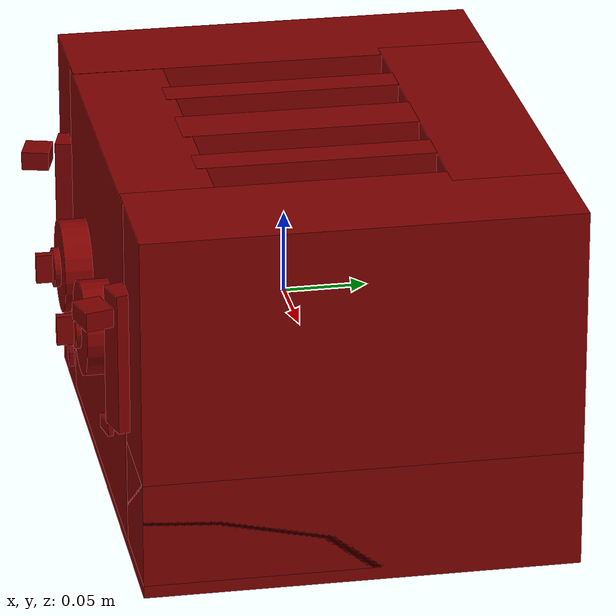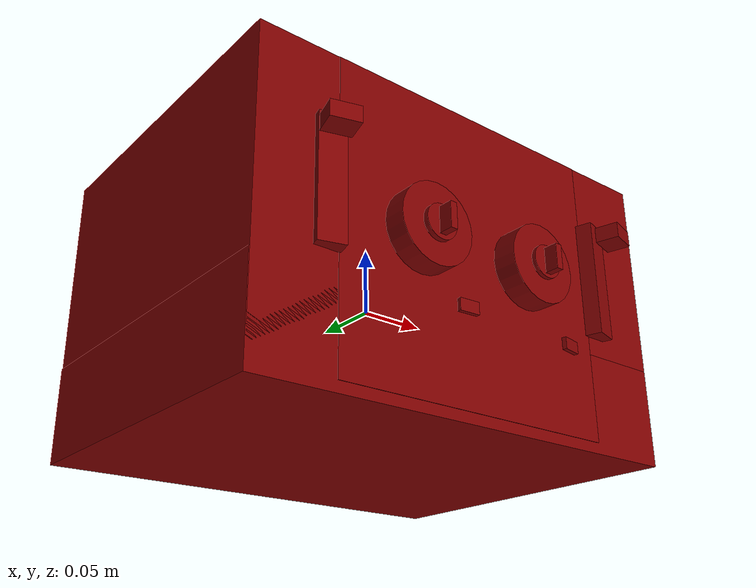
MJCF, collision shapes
<?xml version='1.0' encoding='UTF-8'?>
<mujoco model="model">
  <option timestep="0.002" gravity="0.0 0.0 -9.81"/>
  <compiler angle="radian"/>
  <asset>
    <mesh file="visuals/sideL_button_cancel.obj" name="sideL_button_cancel_vis"/>
    <mesh file="visuals/sideL_knob_doneness.obj" name="sideL_knob_doneness_vis"/>
    <mesh file="visuals/sideL_lever.obj" name="sideL_lever_vis"/>
    <mesh file="visuals/sideR_button_cancel.obj" name="sideR_button_cancel_vis"/>
    <mesh file="visuals/sideR_knob_doneness.obj" name="sideR_knob_doneness_vis"/>
    <mesh file="visuals/sideR_lever.obj" name="sideR_lever_vis"/>
    <mesh file="visuals/Body001.obj" name="Body001_vis"/>
    <texture file="visuals/T_BC001.png" name="Body001_material" type="2d"/>
    <material name="Body001_material" rgba="1 1 1 1.0" texture="Body001_material" shininess="0.4472135901451111" specular="0.3103448502657381"/>
    <texture file="visuals/T_BC001.png" name="sideL_button_cancel_material" type="2d"/>
    <material name="sideL_button_cancel_material" rgba="1 1 1 1.0" texture="sideL_button_cancel_material" shininess="0.4472135901451111" specular="0.3103448502657381"/>
    <texture file="visuals/T_BC001.png" name="sideL_knob_doneness_material" type="2d"/>
    <material name="sideL_knob_doneness_material" rgba="1 1 1 1.0" texture="sideL_knob_doneness_material" shininess="0.4472135901451111" specular="0.3103448502657381"/>
    <texture file="visuals/T_BC001.png" name="sideL_lever_material" type="2d"/>
    <material name="sideL_lever_material" rgba="1 1 1 1.0" texture="sideL_lever_material" shininess="0.4472135901451111" specular="0.3103448502657381"/>
    <texture file="visuals/T_BC001.png" name="sideR_button_cancel_material" type="2d"/>
    <material name="sideR_button_cancel_material" rgba="1 1 1 1.0" texture="sideR_button_cancel_material" shininess="0.4472135901451111" specular="0.3103448502657381"/>
    <texture file="visuals/T_BC001.png" name="sideR_knob_doneness_material" type="2d"/>
    <material name="sideR_knob_doneness_material" rgba="1 1 1 1.0" texture="sideR_knob_doneness_material" shininess="0.4472135901451111" specular="0.3103448502657381"/>
    <texture file="visuals/T_BC001.png" name="sideR_lever_material" type="2d"/>
    <material name="sideR_lever_material" rgba="1 1 1 1.0" texture="sideR_lever_material" shininess="1" specular="1"/>
  </asset>
  <default>
    <default class="visual">
      <geom conaffinity="0" contype="0" group="1" type="mesh"/>
    </default>
    <default class="collision_1">
      <geom group="0" rgba="0.5 0 0 0.5" solref="0.004 1" solimp="0.998 0.998 0.001"/>
    </default>
    <default class="collision_2">
      <geom group="0" rgba="0.5 0 0 0.5" solref="0.004 1" solimp="0.998 0.998 0.001"/>
    </default>
    <default class="collision_3">
      <geom group="0" rgba="0.5 0 0 0.5" solref="0.004 1" solimp="0.998 0.998 0.001"/>
    </default>
    <default class="collision_4">
      <geom group="0" rgba="0.5 0 0 0.5" solref="0.004 1" solimp="0.998 0.998 0.001"/>
    </default>
    <default class="collision_5">
      <geom group="0" rgba="0.5 0 0 0.5" solref="0.004 1" solimp="0.998 0.998 0.001"/>
    </default>
    <default class="collision_6">
      <geom group="0" rgba="0.5 0 0 0.5" solref="0.004 1" solimp="0.998 0.998 0.001"/>
    </default>
    <default class="collision_7">
      <geom group="0" rgba="0.5 0 0 0.5" solref="0.004 1" solimp="0.998 0.998 0.001"/>
    </default>
    <default class="spawn">
      <geom group="0" rgba="1 1 1 0.5" contype="0" conaffinity="0"/>
      <site group="0" rgba="1 1 1 0.5"/>
    </default>
    <default class="region">
      <geom group="1" conaffinity="0" contype="0" rgba="0 1 0 0" mass="0"/>
    </default>
  </default>
  <worldbody>
    <body>
      <body name="object">
        <geom mesh="Body001_vis" type="mesh" solimp="0.998 0.998 0.001" solref="0.001 1" friction="0.95 0.3 0.1" class="visual" material="Body001_material"/>
        <geom type="box" pos="-0.13326146 0.01620062 0.00307653" size="0.035240065306425095 0.1285618394613266 0.10625135898590088" quat="1.0 0.0 0.0 0.0" class="collision_1"/>
        <geom type="box" pos="0.13402896 0.01620062 0.00307653" size="0.03781827911734581 0.1285618394613266 0.10625135898590088" quat="1.0 0.0 0.0 0.0" class="collision_1"/>
        <geom type="box" pos="0.00024525 0.11157913 0.00307652" size="0.10979682207107544 0.03318332880735397 0.10625135898590088" quat="1.0 0.0 0.0 0.0" class="collision_1"/>
        <geom type="box" pos="0.00024525 -0.08512871 0.00300962" size="0.10979682207107544 0.027723005041480064 0.1061844676733017" quat="1.0 0.0 0.0 0.0" class="collision_1"/>
        <geom type="box" pos="-0.05576750 0.00788908 0.00312442" size="0.01008566189557314 0.07094787806272507 0.1062992662191391" quat="1.0 0.0 0.0 0.0" class="collision_1"/>
        <geom type="box" pos="0.00002723 0.00788908 0.00312440" size="0.01638152450323105 0.070948526263237 0.10630057752132416" quat="1.0 0.0 0.0 0.0" class="collision_1"/>
        <geom type="box" pos="0.05630670 0.00788908 0.00312442" size="0.010627384297549725 0.07094787806272507 0.1062992662191391" quat="1.0 0.0 0.0 0.0" class="collision_1"/>
        <geom type="box" pos="0.00138552 0.01620062 -0.07528724" size="0.1704617291688919 0.1285618394613266 0.035510990768671036" quat="1.0 0.0 0.0 0.0" class="collision_1"/>
        <geom type="box" pos="0.11058308 -0.09002899 0.01645520" size="0.009369805455207825 0.0328972153365612 0.04297024384140968" quat="0.990662693977356 0.0 0.0 0.13633568584918976" class="collision_1"/>
        <geom type="box" pos="-0.11141364 -0.08876333 0.01645520" size="0.009369805455207825 0.032897211611270905 0.04297024384140968" quat="0.9915878176689148 0.0 0.0 -0.12943574786186218" class="collision_1"/>
        <geom type="cylinder" pos="0.04679735 -0.11630687 0.00567830" size="0.02828233130276203 0.013564642518758774" quat="0.7070810198783875 0.707082211971283 0.005967419594526291 0.005967406556010246" class="collision_1"/>
        <geom type="cylinder" pos="-0.04641480 -0.11580862 0.00567830" size="0.028282327577471733 0.013564642518758774" quat="0.7070971727371216 0.7070972323417664 -0.0036777539644390345 -0.0036777500063180923" class="collision_1"/>
        <body name="sideL_button_cancel">
          <joint axis="0.0 1.0 0.0" pos="-0.02175286 -0.12595599 -0.04231698" limited="true" name="sideL_button_cancel_joint" range="0.0 0.0015" type="slide" damping="1" frictionloss="1" armature=".01" stiffness="4" springref="-1"/>
          <geom mesh="sideL_button_cancel_vis" type="mesh" solimp="0.998 0.998 0.001" solref="0.001 1" friction="0.95 0.3 0.1" class="visual" material="sideL_button_cancel_material"/>
          <geom class="collision_2" type="box" pos="-0.02148457 -0.12679102 -0.04238301" size="0.007460217922925949 0.0014258968876674771 0.004223212134093046" quat="0.9994127750396729 0.0 0.0 -0.034265268594026566" name="sideL_button_cancel_main"/>
        </body>
        <body name="sideL_knob_doneness">
          <joint axis="0.0 1.0 0.0" pos="-0.04717934 -0.13539437 0.00490608" limited="true" name="sideL_knob_doneness_joint" range="0.0 5.235987755982989" type="hinge" damping="0.05" armature="1" frictionloss="0.75"/>
          <geom mesh="sideL_knob_doneness_vis" type="mesh" solimp="0.998 0.998 0.001" solref="0.001 1" friction="0.95 0.3 0.1" class="visual" material="sideL_knob_doneness_material"/>
          <geom type="cylinder" pos="-0.04713101 -0.13192563 0.00487408" size="0.012079643085598946 0.0018937515560537577" quat="0.7071067094802856 0.7071068286895752 7.26924465066503e-10 -7.269246315999567e-10" class="collision_3" friction="100 0.5 0.01"/>
          <geom class="collision_3" type="box" pos="-0.04714419 -0.13898203 0.00506875" size="0.002570041688159108 0.004999999888241291 0.009000841528177261" quat="1.0 0.0 0.0 0.0" name="sideL_knob_doneness_main" friction="100 0.5 0.01"/>
        </body>
        <body name="sideL_lever">
          <joint axis="0.0 0.0 -1.0" pos="0.00000000 0.00404550 0.00000000" limited="true" name="sideL_lever_joint" range="0.0 0.06" type="slide" damping="1" frictionloss="1" armature=".1" stiffness="2.7" springref="-0.5"/>
          <geom class="region" name="reg_sideL_slotR" type="box" pos="-0.03160888 0.009895639999999997 0.10604301" size="0.014015360000000001 0.06643386 0.07600023"/>
          <geom class="region" name="reg_sideL_slotL" type="box" pos="-0.08175443 0.009895639999999997 0.10604277" size="0.013958289999999998 0.06643386 0.07599999"/>
          <geom mesh="sideL_lever_vis" type="mesh" solimp="0.998 0.998 0.001" solref="0.001 1" friction="0.95 0.3 0.1" class="visual" material="sideL_lever_material"/>
          <geom class="collision_4" type="box" pos="-0.12314539 -0.13235660 0.04775472" size="0.010249958373606205 0.008345482870936394 0.005683100316673517" quat="0.9908793568611145 0.0 0.0 -0.13475200533866882" name="sideL_lever_handle"/>
          <geom class="collision_4" type="box" pos="-0.08178504 0.00988056 0.02977322" size="0.012500007636845112 0.06499999761581421 0.00025407271459698677" quat="1.0 0.0 0.0 0.0" name="sideL_slotL_floor"/>
          <geom class="collision_4" type="box" pos="-0.03152719 0.00988056 0.02977322" size="0.012499970383942127 0.0650000348687172 0.0002540720743127167" quat="1.0 0.0 0.0 0.0" name="sideL_slotR_floor"/>
        </body>
        <body name="sideR_button_cancel">
          <joint axis="0.0 1.0 0.0" pos="0.08030588 -0.11909187 -0.04231698" limited="true" name="sideR_button_cancel_joint" range="0.0 0.0015" type="slide" damping="1" frictionloss="1" armature=".01" stiffness="4" springref="-1"/>
          <geom mesh="sideR_button_cancel_vis" type="mesh" solimp="0.998 0.998 0.001" solref="0.001 1" friction="0.95 0.3 0.1" class="visual" material="sideR_button_cancel_material"/>
          <geom class="collision_5" type="box" pos="0.08036288 -0.11962429 -0.04238301" size="0.007460219319909811 0.0016084511298686266 0.004223212134093046" quat="0.9959295988082886 0.0 0.0 0.09013443440198898" name="sideR_button_cancel_main"/>
        </body>
        <body name="sideR_knob_doneness">
          <joint axis="0.0 1.0 0.0" pos="0.04727194 -0.13539437 0.00566597" limited="true" name="sideR_knob_doneness_joint" range="0.0 5.235987755982989" type="hinge" damping="0.05" armature="1" frictionloss="0.75"/>
          <geom mesh="sideR_knob_doneness_vis" type="mesh" solimp="0.998 0.998 0.001" solref="0.001 1" friction="0.95 0.3 0.1" class="visual" material="sideR_knob_doneness_material"/>
          <geom type="cylinder" pos="0.04720553 -0.13223793 0.00570660" size="0.011814817786216736 0.001532990951091051" quat="0.7071067094802856 0.7071068286895752 0.0 0.0" class="collision_6" friction="100 0.5 0.01"/>
          <geom class="collision_6" type="box" pos="0.04715592 -0.13898203 0.00561221" size="0.002570041688159108 0.004999999888241291 0.009000841528177261" quat="1.0 0.0 0.0 0.0" name="sideR_knob_doneness_main" friction="100 0.5 0.01"/>
        </body>
        <body name="sideR_lever">
          <joint axis="0.0 0.0 -1.0" pos="0.00000000 0.00404550 0.00000000" limited="true" name="sideR_lever_joint" range="0.0 0.06" type="slide" damping="1" frictionloss="1" armature=".1" stiffness="2.7" springref="-0.5"/>
          <geom class="region" name="reg_sideR_slotR" type="box" pos="0.082437435 0.009895639999999997 0.10604301" size="0.013925615000000002 0.06643386 0.07600023"/>
          <geom class="region" name="reg_sideR_slotL" type="box" pos="0.03130129 0.009895639999999997 0.10604301" size="0.013965140000000001 0.06643386 0.07600023"/>
          <geom mesh="sideR_lever_vis" type="mesh" solimp="0.998 0.998 0.001" solref="0.001 1" friction="0.95 0.3 0.1" class="visual" material="sideR_lever_material"/>
          <geom class="collision_7" type="box" pos="0.12323234 -0.13235660 0.04775472" size="0.010249958373606205 0.008345482870936394 0.005683100316673517" quat="7.480930719339085e-08 0.9908793568611145 0.13475200533866882 1.017350292897845e-08" name="sideR_lever_handle"/>
          <geom class="collision_7" type="box" pos="0.03129896 0.00988056 0.02977322" size="0.01249999925494194 0.06499999761581421 0.00025407271459698677" quat="1.0 0.0 0.0 0.0" name="sideR_slotL_floor"/>
          <geom class="collision_7" type="box" pos="0.08247646 0.00988056 0.02977322" size="0.012499981559813023 0.06499997526407242 0.00025407233624719083" quat="1.0 0.0 0.0 0.0" name="sideR_slotR_floor"/>
        </body>
        <geom class="region" name="reg_main" type="box" pos="-5.0000000112460086e-09 0.006601134999999994 0.0" size="0.17110429500000002 0.13866340500000002 0.10998916"/>
      </body>
    </body>
  </worldbody>
  <actuator>
    <motor name="sideL_button_cancel_joint_actuator" joint="sideL_button_cancel_joint" gear="0.1"/>
    <motor name="sideL_knob_doneness_joint_actuator" joint="sideL_knob_doneness_joint" gear="10"/>
    <motor name="sideL_lever_joint_actuator" joint="sideL_lever_joint" gear="5"/>
    <motor name="sideR_button_cancel_joint_actuator" joint="sideR_button_cancel_joint" gear="0.1"/>
    <motor name="sideR_knob_doneness_joint_actuator" joint="sideR_knob_doneness_joint" gear="10"/>
    <motor name="sideR_lever_joint_actuator" joint="sideR_lever_joint" gear="5"/>
  </actuator>
</mujoco>
